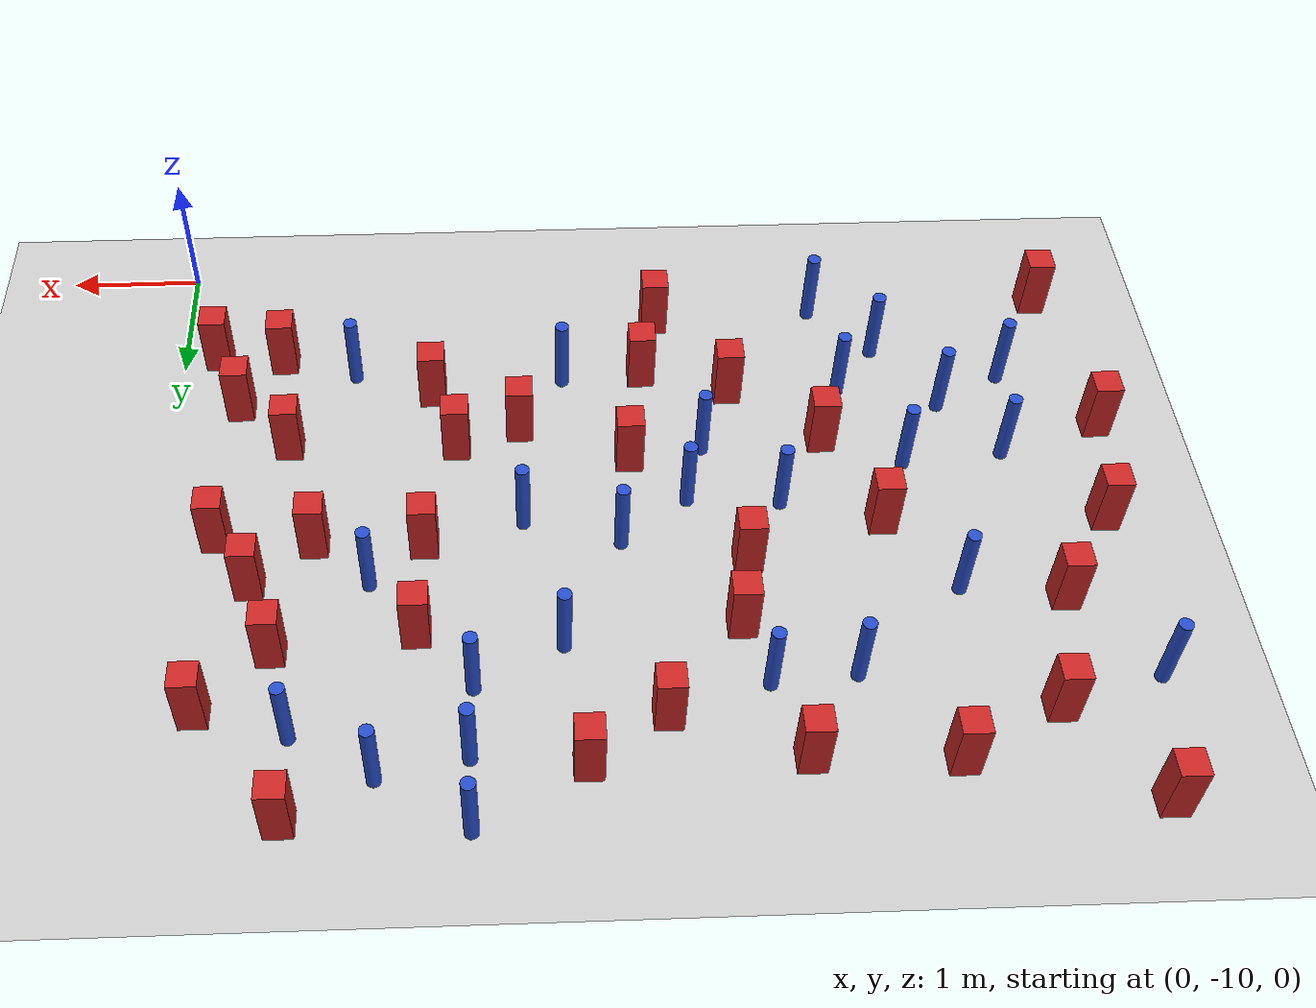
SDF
<sdf version="1.6">
 <world name="default">
  <model name="ground_plane">
   <static>1</static>
   <link name="link">
    <collision name="collision">
     <geometry><plane><normal>0 0 1</normal><size>100 100</size></plane></geometry>
     <surface><friction><ode><mu>100</mu><mu2>50</mu2></ode></friction></surface>
    </collision>
    <visual name="visual">
     <cast_shadows>0</cast_shadows>
     <geometry><plane><normal>0 0 1</normal><size>100 100</size></plane></geometry>
     <material>
      <ambient>1.0 1.0 1.0 1.0</ambient>
      <diffuse>0.8 0.8 0.8 1.0</diffuse>
      <specular>0.01 0.01 0.01 1.000000</specular>
     </material>
    </visual>
   </link>
  </model>
  <model name="pole_obstacle0">
   <static>true</static>
   <pose>-4.22685877733 -5.90566886651 -3.09024884793e-07 -7.19054271911e-07 -2.1131507516e-07 -1.93935509277e-07</pose>
   <link name="link">
    <pose>0 0 0.3 0 -0 0</pose>
    <inertial>
     <mass>1</mass>
     <inertia><ixx>0.145833</ixx><ixy>0</ixy><ixz>0</ixz><iyy>0.145833</iyy><iyz>0</iyz><izz>0.125</izz></inertia>
    </inertial>
    <collision name="collision">
     <geometry><cylinder><radius>0.05</radius><length>.6</length></cylinder></geometry>
    </collision>
    <visual name="visual">
     <geometry><cylinder><radius>0.05</radius><length>.6</length></cylinder></geometry>
     <material>
      <script><name>Gazebo/Blue</name><uri>file://media/materials/scripts/gazebo.material</uri></script>
     </material>
    </visual>
   </link>
  </model>
  <model name="pole_obstacle3">
   <static>true</static>
   <pose>-2.24240057749 -5.93828908291 -3.09024884793e-07 -7.19054271912e-07 -2.11315075134e-07 -1.93935509266e-07</pose>
   <link name="link">
    <pose>0 0 0.3 0 -0 0</pose>
    <inertial>
     <mass>1</mass>
     <inertia><ixx>0.145833</ixx><ixy>0</ixy><ixz>0</ixz><iyy>0.145833</iyy><iyz>0</iyz><izz>0.125</izz></inertia>
    </inertial>
    <collision name="collision">
     <geometry><cylinder><radius>0.05</radius><length>.6</length></cylinder></geometry>
    </collision>
    <visual name="visual">
     <geometry><cylinder><radius>0.05</radius><length>.6</length></cylinder></geometry>
     <material>
      <script><name>Gazebo/Blue</name><uri>file://media/materials/scripts/gazebo.material</uri></script>
     </material>
    </visual>
   </link>
  </model>
  <model name="square_post_obstacle6">
   <static>true</static>
   <pose>-0.40497941243 -5.79051482355 -4.36207812815e-07 3.75137919937e-06 9.77721102514e-07 2.47381364184e-05</pose>
   <link name="link">
    <pose>0 0 0.25 0 -0 0</pose>
    <inertial>
     <mass>100</mass>
     <inertia>
      <ixx>0.166667</ixx>
      <ixy>0</ixy>
      <ixz>0</ixz>
      <iyy>0.166667</iyy>
      <iyz>0</iyz>
      <izz>0.166667</izz>
     </inertia>
    </inertial>
    <collision name="collision"><geometry><box><size>.2 .2 .5</size></box></geometry></collision>
    <visual name="visual">
     <geometry><box><size>.2 .2 .5</size></box></geometry>
     <material>
      <script><name>Gazebo/Red</name><uri>file://media/materials/scripts/gazebo.material</uri></script>
     </material>
    </visual>
   </link>
  </model>
  <model name="pole_obstacle16">
   <static>true</static>
   <pose>-5.43233219148 -7.82318585264 -3.09024884793e-07 -7.19054271911e-07 -2.1131507516e-07 -1.93935509277e-07</pose>
   <link name="link">
    <pose>0 0 0.3 0 -0 0</pose>
    <inertial>
     <mass>1</mass>
     <inertia><ixx>0.145833</ixx><ixy>0</ixy><ixz>0</ixz><iyy>0.145833</iyy><iyz>0</iyz><izz>0.125</izz></inertia>
    </inertial>
    <collision name="collision">
     <geometry><cylinder><radius>0.05</radius><length>.6</length></cylinder></geometry>
    </collision>
    <visual name="visual">
     <geometry><cylinder><radius>0.05</radius><length>.6</length></cylinder></geometry>
     <material>
      <script><name>Gazebo/Blue</name><uri>file://media/materials/scripts/gazebo.material</uri></script>
     </material>
    </visual>
   </link>
  </model>
  <model name="pole_obstacle20">
   <static>true</static>
   <pose>-4.82213224329 -5.9598305133 -3.09024884793e-07 -7.19054271911e-07 -2.1131507516e-07 -1.93935509277e-07</pose>
   <link name="link">
    <pose>0 0 0.3 0 -0 0</pose>
    <inertial>
     <mass>1</mass>
     <inertia><ixx>0.145833</ixx><ixy>0</ixy><ixz>0</ixz><iyy>0.145833</iyy><iyz>0</iyz><izz>0.125</izz></inertia>
    </inertial>
    <collision name="collision">
     <geometry><cylinder><radius>0.05</radius><length>.6</length></cylinder></geometry>
    </collision>
    <visual name="visual">
     <geometry><cylinder><radius>0.05</radius><length>.6</length></cylinder></geometry>
     <material>
      <script><name>Gazebo/Blue</name><uri>file://media/materials/scripts/gazebo.material</uri></script>
     </material>
    </visual>
   </link>
  </model>
  <model name="pole_obstacle22">
   <static>true</static>
   <pose>-3.80070359319 -7.52140959583 -3.09024884793e-07 -7.19054271912e-07 -2.11315075134e-07 -1.93935509266e-07</pose>
   <link name="link">
    <pose>0 0 0.3 0 -0 0</pose>
    <inertial>
     <mass>1</mass>
     <inertia><ixx>0.145833</ixx><ixy>0</ixy><ixz>0</ixz><iyy>0.145833</iyy><iyz>0</iyz><izz>0.125</izz></inertia>
    </inertial>
    <collision name="collision">
     <geometry><cylinder><radius>0.05</radius><length>.6</length></cylinder></geometry>
    </collision>
    <visual name="visual">
     <geometry><cylinder><radius>0.05</radius><length>.6</length></cylinder></geometry>
     <material>
      <script><name>Gazebo/Blue</name><uri>file://media/materials/scripts/gazebo.material</uri></script>
     </material>
    </visual>
   </link>
  </model>
  <model name="square_post_obstacle26">
   <static>true</static>
   <pose>-6.79005237158 -7.24333525429 -4.36207812815e-07 3.75137919937e-06 9.77721102514e-07 2.47381364184e-05</pose>
   <link name="link">
    <pose>0 0 0.25 0 -0 0</pose>
    <inertial>
     <mass>100</mass>
     <inertia>
      <ixx>0.166667</ixx>
      <ixy>0</ixy>
      <ixz>0</ixz>
      <iyy>0.166667</iyy>
      <iyz>0</iyz>
      <izz>0.166667</izz>
     </inertia>
    </inertial>
    <collision name="collision"><geometry><box><size>.2 .2 .5</size></box></geometry></collision>
    <visual name="visual">
     <geometry><box><size>.2 .2 .5</size></box></geometry>
     <material>
      <script><name>Gazebo/Red</name><uri>file://media/materials/scripts/gazebo.material</uri></script>
     </material>
    </visual>
   </link>
  </model>
  <model name="square_post_obstacle30">
   <static>true</static>
   <pose>-3.54506290027 -8.79145635871 -4.36207812815e-07 3.75137919937e-06 9.77721102514e-07 2.47381364184e-05</pose>
   <link name="link">
    <pose>0 0 0.25 0 -0 0</pose>
    <inertial>
     <mass>100</mass>
     <inertia>
      <ixx>0.166667</ixx>
      <ixy>0</ixy>
      <ixz>0</ixz>
      <iyy>0.166667</iyy>
      <iyz>0</iyz>
      <izz>0.166667</izz>
     </inertia>
    </inertial>
    <collision name="collision"><geometry><box><size>.2 .2 .5</size></box></geometry></collision>
    <visual name="visual">
     <geometry><box><size>.2 .2 .5</size></box></geometry>
     <material>
      <script><name>Gazebo/Red</name><uri>file://media/materials/scripts/gazebo.material</uri></script>
     </material>
    </visual>
   </link>
  </model>
  <model name="pole_obstacle50">
   <static>true</static>
   <pose>-1.03329216973 -5.59399707839 -3.09024884793e-07 -7.19054271912e-07 -2.11315075133e-07 -1.93935509264e-07</pose>
   <link name="link">
    <pose>0 0 0.3 0 -0 0</pose>
    <inertial>
     <mass>1</mass>
     <inertia><ixx>0.145833</ixx><ixy>0</ixy><ixz>0</ixz><iyy>0.145833</iyy><iyz>0</iyz><izz>0.125</izz></inertia>
    </inertial>
    <collision name="collision">
     <geometry><cylinder><radius>0.05</radius><length>.6</length></cylinder></geometry>
    </collision>
    <visual name="visual">
     <geometry><cylinder><radius>0.05</radius><length>.6</length></cylinder></geometry>
     <material>
      <script><name>Gazebo/Blue</name><uri>file://media/materials/scripts/gazebo.material</uri></script>
     </material>
    </visual>
   </link>
  </model>
  <model name="pole_obstacle54">
   <static>true</static>
   <pose>-6.1854436074 -7.89839784507 -3.09024884793e-07 -7.19054271911e-07 -2.1131507516e-07 -1.93935509277e-07</pose>
   <link name="link">
    <pose>0 0 0.3 0 -0 0</pose>
    <inertial>
     <mass>1</mass>
     <inertia><ixx>0.145833</ixx><ixy>0</ixy><ixz>0</ixz><iyy>0.145833</iyy><iyz>0</iyz><izz>0.125</izz></inertia>
    </inertial>
    <collision name="collision">
     <geometry><cylinder><radius>0.05</radius><length>.6</length></cylinder></geometry>
    </collision>
    <visual name="visual">
     <geometry><cylinder><radius>0.05</radius><length>.6</length></cylinder></geometry>
     <material>
      <script><name>Gazebo/Blue</name><uri>file://media/materials/scripts/gazebo.material</uri></script>
     </material>
    </visual>
   </link>
  </model>
  <model name="pole_obstacle55">
   <static>true</static>
   <pose>-2.21987423086 -5.39950368308 -3.09024884793e-07 -7.19054271912e-07 -2.11315075134e-07 -1.93935509266e-07</pose>
   <link name="link">
    <pose>0 0 0.3 0 -0 0</pose>
    <inertial>
     <mass>1</mass>
     <inertia><ixx>0.145833</ixx><ixy>0</ixy><ixz>0</ixz><iyy>0.145833</iyy><iyz>0</iyz><izz>0.125</izz></inertia>
    </inertial>
    <collision name="collision">
     <geometry><cylinder><radius>0.05</radius><length>.6</length></cylinder></geometry>
    </collision>
    <visual name="visual">
     <geometry><cylinder><radius>0.05</radius><length>.6</length></cylinder></geometry>
     <material>
      <script><name>Gazebo/Blue</name><uri>file://media/materials/scripts/gazebo.material</uri></script>
     </material>
    </visual>
   </link>
  </model>
  <model name="pole_obstacle61">
   <static>true</static>
   <pose>-2.86086476162 -6.26308975601 -3.09024884793e-07 -7.19054271912e-07 -2.11315075134e-07 -1.93935509266e-07</pose>
   <link name="link">
    <pose>0 0 0.3 0 -0 0</pose>
    <inertial>
     <mass>1</mass>
     <inertia><ixx>0.145833</ixx><ixy>0</ixy><ixz>0</ixz><iyy>0.145833</iyy><iyz>0</iyz><izz>0.125</izz></inertia>
    </inertial>
    <collision name="collision">
     <geometry><cylinder><radius>0.05</radius><length>.6</length></cylinder></geometry>
    </collision>
    <visual name="visual">
     <geometry><cylinder><radius>0.05</radius><length>.6</length></cylinder></geometry>
     <material>
      <script><name>Gazebo/Blue</name><uri>file://media/materials/scripts/gazebo.material</uri></script>
     </material>
    </visual>
   </link>
  </model>
  <model name="square_post_obstacle48">
   <static>true</static>
   <pose>-1.11841032075 -7.18690967486 -4.36207812815e-07 3.75137919937e-06 9.77721102514e-07 2.47381364184e-05</pose>
   <link name="link">
    <pose>0 0 0.25 0 -0 0</pose>
    <inertial>
     <mass>100</mass>
     <inertia>
      <ixx>0.166667</ixx>
      <ixy>0</ixy>
      <ixz>0</ixz>
      <iyy>0.166667</iyy>
      <iyz>0</iyz>
      <izz>0.166667</izz>
     </inertia>
    </inertial>
    <collision name="collision"><geometry><box><size>.2 .2 .5</size></box></geometry></collision>
    <visual name="visual">
     <geometry><box><size>.2 .2 .5</size></box></geometry>
     <material>
      <script><name>Gazebo/Red</name><uri>file://media/materials/scripts/gazebo.material</uri></script>
     </material>
    </visual>
   </link>
  </model>
  <model name="pole_obstacle66">
   <static>true</static>
   <pose>-5.7929600305 -8.39557212611 -3.09024884793e-07 -7.19054271912e-07 -2.1131507513e-07 -1.93935509261e-07</pose>
   <link name="link">
    <pose>0 0 0.3 0 -0 0</pose>
    <inertial>
     <mass>1</mass>
     <inertia><ixx>0.145833</ixx><ixy>0</ixy><ixz>0</ixz><iyy>0.145833</iyy><iyz>0</iyz><izz>0.125</izz></inertia>
    </inertial>
    <collision name="collision">
     <geometry><cylinder><radius>0.05</radius><length>.6</length></cylinder></geometry>
    </collision>
    <visual name="visual">
     <geometry><cylinder><radius>0.05</radius><length>.6</length></cylinder></geometry>
     <material>
      <script><name>Gazebo/Blue</name><uri>file://media/materials/scripts/gazebo.material</uri></script>
     </material>
    </visual>
   </link>
  </model>
  <model name="square_post_obstacle52">
   <static>true</static>
   <pose>-1.02269006401 -4.9662710609 -4.36207812815e-07 3.75137919937e-06 9.77721102514e-07 2.47381364184e-05</pose>
   <link name="link">
    <pose>0 0 0.25 0 -0 0</pose>
    <inertial>
     <mass>100</mass>
     <inertia>
      <ixx>0.166667</ixx>
      <ixy>0</ixy>
      <ixz>0</ixz>
      <iyy>0.166667</iyy>
      <iyz>0</iyz>
      <izz>0.166667</izz>
     </inertia>
    </inertial>
    <collision name="collision"><geometry><box><size>.2 .2 .5</size></box></geometry></collision>
    <visual name="visual">
     <geometry><box><size>.2 .2 .5</size></box></geometry>
     <material>
      <script><name>Gazebo/Red</name><uri>file://media/materials/scripts/gazebo.material</uri></script>
     </material>
    </visual>
   </link>
  </model>
  <model name="square_post_obstacle57">
   <static>true</static>
   <pose>-4.41777826321 -5.31722861614 -4.36207812815e-07 3.75137919937e-06 9.77721102514e-07 2.47381364184e-05</pose>
   <link name="link">
    <pose>0 0 0.25 0 -0 0</pose>
    <inertial>
     <mass>100</mass>
     <inertia>
      <ixx>0.166667</ixx>
      <ixy>0</ixy>
      <ixz>0</ixz>
      <iyy>0.166667</iyy>
      <iyz>0</iyz>
      <izz>0.166667</izz>
     </inertia>
    </inertial>
    <collision name="collision"><geometry><box><size>.2 .2 .5</size></box></geometry></collision>
    <visual name="visual">
     <geometry><box><size>.2 .2 .5</size></box></geometry>
     <material>
      <script><name>Gazebo/Red</name><uri>file://media/materials/scripts/gazebo.material</uri></script>
     </material>
    </visual>
   </link>
  </model>
  <model name="pole_obstacle72">
   <static>true</static>
   <pose>-6.85723296612 -5.87700242799 -3.09024884793e-07 -7.19054271911e-07 -2.1131507516e-07 -1.93935509277e-07</pose>
   <link name="link">
    <pose>0 0 0.3 0 -0 0</pose>
    <inertial>
     <mass>1</mass>
     <inertia><ixx>0.145833</ixx><ixy>0</ixy><ixz>0</ixz><iyy>0.145833</iyy><iyz>0</iyz><izz>0.125</izz></inertia>
    </inertial>
    <collision name="collision">
     <geometry><cylinder><radius>0.05</radius><length>.6</length></cylinder></geometry>
    </collision>
    <visual name="visual">
     <geometry><cylinder><radius>0.05</radius><length>.6</length></cylinder></geometry>
     <material>
      <script><name>Gazebo/Blue</name><uri>file://media/materials/scripts/gazebo.material</uri></script>
     </material>
    </visual>
   </link>
  </model>
  <model name="square_post_obstacle64">
   <static>true</static>
   <pose>-5.39060618571 -5.26934109784 -4.36207812815e-07 3.75137919937e-06 9.77721102514e-07 2.47381364184e-05</pose>
   <link name="link">
    <pose>0 0 0.25 0 -0 0</pose>
    <inertial>
     <mass>100</mass>
     <inertia>
      <ixx>0.166667</ixx>
      <ixy>0</ixy>
      <ixz>0</ixz>
      <iyy>0.166667</iyy>
      <iyz>0</iyz>
      <izz>0.166667</izz>
     </inertia>
    </inertial>
    <collision name="collision"><geometry><box><size>.2 .2 .5</size></box></geometry></collision>
    <visual name="visual">
     <geometry><box><size>.2 .2 .5</size></box></geometry>
     <material>
      <script><name>Gazebo/Red</name><uri>file://media/materials/scripts/gazebo.material</uri></script>
     </material>
    </visual>
   </link>
  </model>
  <model name="square_post_obstacle66">
   <static>true</static>
   <pose>-0.787375594648 -9.02490645949 -4.36207812815e-07 3.75137919937e-06 9.77721102514e-07 2.47381364184e-05</pose>
   <link name="link">
    <pose>0 0 0.25 0 -0 0</pose>
    <inertial>
     <mass>100</mass>
     <inertia>
      <ixx>0.166667</ixx>
      <ixy>0</ixy>
      <ixz>0</ixz>
      <iyy>0.166667</iyy>
      <iyz>0</iyz>
      <izz>0.166667</izz>
     </inertia>
    </inertial>
    <collision name="collision"><geometry><box><size>.2 .2 .5</size></box></geometry></collision>
    <visual name="visual">
     <geometry><box><size>.2 .2 .5</size></box></geometry>
     <material>
      <script><name>Gazebo/Red</name><uri>file://media/materials/scripts/gazebo.material</uri></script>
     </material>
    </visual>
   </link>
  </model>
  <model name="pole_obstacle84">
   <static>true</static>
   <pose>-2.60776745667 -7.34973270101 -3.09024884793e-07 -7.19054271912e-07 -2.11315075134e-07 -1.93935509266e-07</pose>
   <link name="link">
    <pose>0 0 0.3 0 -0 0</pose>
    <inertial>
     <mass>1</mass>
     <inertia><ixx>0.145833</ixx><ixy>0</ixy><ixz>0</ixz><iyy>0.145833</iyy><iyz>0</iyz><izz>0.125</izz></inertia>
    </inertial>
    <collision name="collision">
     <geometry><cylinder><radius>0.05</radius><length>.6</length></cylinder></geometry>
    </collision>
    <visual name="visual">
     <geometry><cylinder><radius>0.05</radius><length>.6</length></cylinder></geometry>
     <material>
      <script><name>Gazebo/Blue</name><uri>file://media/materials/scripts/gazebo.material</uri></script>
     </material>
    </visual>
   </link>
  </model>
  <model name="square_post_obstacle79">
   <static>true</static>
   <pose>-4.84732686888 -8.06731916734 -4.36207812815e-07 3.75137919937e-06 9.77721102514e-07 2.47381364184e-05</pose>
   <link name="link">
    <pose>0 0 0.25 0 -0 0</pose>
    <inertial>
     <mass>100</mass>
     <inertia>
      <ixx>0.166667</ixx>
      <ixy>0</ixy>
      <ixz>0</ixz>
      <iyy>0.166667</iyy>
      <iyz>0</iyz>
      <izz>0.166667</izz>
     </inertia>
    </inertial>
    <collision name="collision"><geometry><box><size>.2 .2 .5</size></box></geometry></collision>
    <visual name="visual">
     <geometry><box><size>.2 .2 .5</size></box></geometry>
     <material>
      <script><name>Gazebo/Red</name><uri>file://media/materials/scripts/gazebo.material</uri></script>
     </material>
    </visual>
   </link>
  </model>
  <model name="pole_obstacle90">
   <static>true</static>
   <pose>-4.93359019213 -9.44469304234 -3.09024884793e-07 -7.19054271912e-07 -2.1131507513e-07 -1.93935509261e-07</pose>
   <link name="link">
    <pose>0 0 0.3 0 -0 0</pose>
    <inertial>
     <mass>1</mass>
     <inertia><ixx>0.145833</ixx><ixy>0</ixy><ixz>0</ixz><iyy>0.145833</iyy><iyz>0</iyz><izz>0.125</izz></inertia>
    </inertial>
    <collision name="collision">
     <geometry><cylinder><radius>0.05</radius><length>.6</length></cylinder></geometry>
    </collision>
    <visual name="visual">
     <geometry><cylinder><radius>0.05</radius><length>.6</length></cylinder></geometry>
     <material>
      <script><name>Gazebo/Blue</name><uri>file://media/materials/scripts/gazebo.material</uri></script>
     </material>
    </visual>
   </link>
  </model>
  <model name="square_post_obstacle87">
   <static>true</static>
   <pose>-6.74154632882 -9.49803519103 -4.36207812815e-07 3.75137919937e-06 9.77721102514e-07 2.47381364184e-05</pose>
   <link name="link">
    <pose>0 0 0.25 0 -0 0</pose>
    <inertial>
     <mass>100</mass>
     <inertia>
      <ixx>0.166667</ixx>
      <ixy>0</ixy>
      <ixz>0</ixz>
      <iyy>0.166667</iyy>
      <iyz>0</iyz>
      <izz>0.166667</izz>
     </inertia>
    </inertial>
    <collision name="collision"><geometry><box><size>.2 .2 .5</size></box></geometry></collision>
    <visual name="visual">
     <geometry><box><size>.2 .2 .5</size></box></geometry>
     <material>
      <script><name>Gazebo/Red</name><uri>file://media/materials/scripts/gazebo.material</uri></script>
     </material>
    </visual>
   </link>
  </model>
  <model name="pole_obstacle98">
   <static>true</static>
   <pose>-1.51861145344 -6.82939583395 -3.09024884793e-07 -7.19054271912e-07 -2.11315075134e-07 -1.93935509265e-07</pose>
   <link name="link">
    <pose>0 0 0.3 0 -0 0</pose>
    <inertial>
     <mass>1</mass>
     <inertia><ixx>0.145833</ixx><ixy>0</ixy><ixz>0</ixz><iyy>0.145833</iyy><iyz>0</iyz><izz>0.125</izz></inertia>
    </inertial>
    <collision name="collision">
     <geometry><cylinder><radius>0.05</radius><length>.6</length></cylinder></geometry>
    </collision>
    <visual name="visual">
     <geometry><cylinder><radius>0.05</radius><length>.6</length></cylinder></geometry>
     <material>
      <script><name>Gazebo/Blue</name><uri>file://media/materials/scripts/gazebo.material</uri></script>
     </material>
    </visual>
   </link>
  </model>
  <model name="square_post_obstacle95">
   <static>true</static>
   <pose>-6.11040092105 -5.64651498879 -4.36207812815e-07 3.75137919937e-06 9.77721102514e-07 2.47381364184e-05</pose>
   <link name="link">
    <pose>0 0 0.25 0 -0 0</pose>
    <inertial>
     <mass>100</mass>
     <inertia>
      <ixx>0.166667</ixx>
      <ixy>0</ixy>
      <ixz>0</ixz>
      <iyy>0.166667</iyy>
      <iyz>0</iyz>
      <izz>0.166667</izz>
     </inertia>
    </inertial>
    <collision name="collision"><geometry><box><size>.2 .2 .5</size></box></geometry></collision>
    <visual name="visual">
     <geometry><box><size>.2 .2 .5</size></box></geometry>
     <material>
      <script><name>Gazebo/Red</name><uri>file://media/materials/scripts/gazebo.material</uri></script>
     </material>
    </visual>
   </link>
  </model>
  <model name="pole_obstacle110">
   <static>true</static>
   <pose>-5.37275652074 -8.99198567098 -3.09024884793e-07 -7.19054271912e-07 -2.1131507513e-07 -1.93935509261e-07</pose>
   <link name="link">
    <pose>0 0 0.3 0 -0 0</pose>
    <inertial>
     <mass>1</mass>
     <inertia><ixx>0.145833</ixx><ixy>0</ixy><ixz>0</ixz><iyy>0.145833</iyy><iyz>0</iyz><izz>0.125</izz></inertia>
    </inertial>
    <collision name="collision">
     <geometry><cylinder><radius>0.05</radius><length>.6</length></cylinder></geometry>
    </collision>
    <visual name="visual">
     <geometry><cylinder><radius>0.05</radius><length>.6</length></cylinder></geometry>
     <material>
      <script><name>Gazebo/Blue</name><uri>file://media/materials/scripts/gazebo.material</uri></script>
     </material>
    </visual>
   </link>
  </model>
  <model name="pole_obstacle111">
   <static>true</static>
   <pose>-6.30846158067 -8.68051044605 -3.09024884793e-07 -7.19054271912e-07 -2.1131507513e-07 -1.93935509261e-07</pose>
   <link name="link">
    <pose>0 0 0.3 0 -0 0</pose>
    <inertial>
     <mass>1</mass>
     <inertia><ixx>0.145833</ixx><ixy>0</ixy><ixz>0</ixz><iyy>0.145833</iyy><iyz>0</iyz><izz>0.125</izz></inertia>
    </inertial>
    <collision name="collision">
     <geometry><cylinder><radius>0.05</radius><length>.6</length></cylinder></geometry>
    </collision>
    <visual name="visual">
     <geometry><cylinder><radius>0.05</radius><length>.6</length></cylinder></geometry>
     <material>
      <script><name>Gazebo/Blue</name><uri>file://media/materials/scripts/gazebo.material</uri></script>
     </material>
    </visual>
   </link>
  </model>
  <model name="square_post_obstacle107">
   <static>true</static>
   <pose>-1.9003096119 -7.15473615045 -4.36207812815e-07 3.75137919937e-06 9.77721102514e-07 2.47381364184e-05</pose>
   <link name="link">
    <pose>0 0 0.25 0 -0 0</pose>
    <inertial>
     <mass>100</mass>
     <inertia>
      <ixx>0.166667</ixx>
      <ixy>0</ixy>
      <ixz>0</ixz>
      <iyy>0.166667</iyy>
      <iyz>0</iyz>
      <izz>0.166667</izz>
     </inertia>
    </inertial>
    <collision name="collision"><geometry><box><size>.2 .2 .5</size></box></geometry></collision>
    <visual name="visual">
     <geometry><box><size>.2 .2 .5</size></box></geometry>
     <material>
      <script><name>Gazebo/Red</name><uri>file://media/materials/scripts/gazebo.material</uri></script>
     </material>
    </visual>
   </link>
  </model>
  <model name="square_post_obstacle115">
   <static>true</static>
   <pose>-4.08383093921 -6.38954138947 -4.36207812815e-07 3.75137919937e-06 9.77721102514e-07 2.47381364184e-05</pose>
   <link name="link">
    <pose>0 0 0.25 0 -0 0</pose>
    <inertial>
     <mass>100</mass>
     <inertia>
      <ixx>0.166667</ixx>
      <ixy>0</ixy>
      <ixz>0</ixz>
      <iyy>0.166667</iyy>
      <iyz>0</iyz>
      <izz>0.166667</izz>
     </inertia>
    </inertial>
    <collision name="collision"><geometry><box><size>.2 .2 .5</size></box></geometry></collision>
    <visual name="visual">
     <geometry><box><size>.2 .2 .5</size></box></geometry>
     <material>
      <script><name>Gazebo/Red</name><uri>file://media/materials/scripts/gazebo.material</uri></script>
     </material>
    </visual>
   </link>
  </model>
  <model name="square_post_obstacle129">
   <static>true</static>
   <pose>-4.19301665396 -8.58769629284 -4.36207812815e-07 3.75137919937e-06 9.77721102514e-07 2.47381364184e-05</pose>
   <link name="link">
    <pose>0 0 0.25 0 -0 0</pose>
    <inertial>
     <mass>100</mass>
     <inertia>
      <ixx>0.166667</ixx>
      <ixy>0</ixy>
      <ixz>0</ixz>
      <iyy>0.166667</iyy>
      <iyz>0</iyz>
      <izz>0.166667</izz>
     </inertia>
    </inertial>
    <collision name="collision"><geometry><box><size>.2 .2 .5</size></box></geometry></collision>
    <visual name="visual">
     <geometry><box><size>.2 .2 .5</size></box></geometry>
     <material>
      <script><name>Gazebo/Red</name><uri>file://media/materials/scripts/gazebo.material</uri></script>
     </material>
    </visual>
   </link>
  </model>
  <model name="square_post_obstacle131">
   <static>true</static>
   <pose>-0.272269935795 -9.08338894635 -4.36207812815e-07 3.75137919937e-06 9.77721102514e-07 2.47381364184e-05</pose>
   <link name="link">
    <pose>0 0 0.25 0 -0 0</pose>
    <inertial>
     <mass>100</mass>
     <inertia>
      <ixx>0.166667</ixx>
      <ixy>0</ixy>
      <ixz>0</ixz>
      <iyy>0.166667</iyy>
      <iyz>0</iyz>
      <izz>0.166667</izz>
     </inertia>
    </inertial>
    <collision name="collision"><geometry><box><size>.2 .2 .5</size></box></geometry></collision>
    <visual name="visual">
     <geometry><box><size>.2 .2 .5</size></box></geometry>
     <material>
      <script><name>Gazebo/Red</name><uri>file://media/materials/scripts/gazebo.material</uri></script>
     </material>
    </visual>
   </link>
  </model>
  <model name="square_post_obstacle135">
   <static>true</static>
   <pose>-3.52248420909 -5.67214441622 -4.36207812815e-07 3.75137919937e-06 9.77721102514e-07 2.47381364184e-05</pose>
   <link name="link">
    <pose>0 0 0.25 0 -0 0</pose>
    <inertial>
     <mass>100</mass>
     <inertia>
      <ixx>0.166667</ixx>
      <ixy>0</ixy>
      <ixz>0</ixz>
      <iyy>0.166667</iyy>
      <iyz>0</iyz>
      <izz>0.166667</izz>
     </inertia>
    </inertial>
    <collision name="collision"><geometry><box><size>.2 .2 .5</size></box></geometry></collision>
    <visual name="visual">
     <geometry><box><size>.2 .2 .5</size></box></geometry>
     <material>
      <script><name>Gazebo/Red</name><uri>file://media/materials/scripts/gazebo.material</uri></script>
     </material>
    </visual>
   </link>
  </model>
  <model name="square_post_obstacle137">
   <static>true</static>
   <pose>-0.881133966788 -8.12840176138 -4.36207812815e-07 3.75137919937e-06 9.77721102514e-07 2.47381364184e-05</pose>
   <link name="link">
    <pose>0 0 0.25 0 -0 0</pose>
    <inertial>
     <mass>100</mass>
     <inertia>
      <ixx>0.166667</ixx>
      <ixy>0</ixy>
      <ixz>0</ixz>
      <iyy>0.166667</iyy>
      <iyz>0</iyz>
      <izz>0.166667</izz>
     </inertia>
    </inertial>
    <collision name="collision"><geometry><box><size>.2 .2 .5</size></box></geometry></collision>
    <visual name="visual">
     <geometry><box><size>.2 .2 .5</size></box></geometry>
     <material>
      <script><name>Gazebo/Red</name><uri>file://media/materials/scripts/gazebo.material</uri></script>
     </material>
    </visual>
   </link>
  </model>
  <model name="pole_obstacle142">
   <static>true</static>
   <pose>-4.47785796686 -7.46909269142 -3.09024884793e-07 -7.19054271911e-07 -2.1131507516e-07 -1.93935509277e-07</pose>
   <link name="link">
    <pose>0 0 0.3 0 -0 0</pose>
    <inertial>
     <mass>1</mass>
     <inertia><ixx>0.145833</ixx><ixy>0</ixy><ixz>0</ixz><iyy>0.145833</iyy><iyz>0</iyz><izz>0.125</izz></inertia>
    </inertial>
    <collision name="collision">
     <geometry><cylinder><radius>0.05</radius><length>.6</length></cylinder></geometry>
    </collision>
    <visual name="visual">
     <geometry><cylinder><radius>0.05</radius><length>.6</length></cylinder></geometry>
     <material>
      <script><name>Gazebo/Blue</name><uri>file://media/materials/scripts/gazebo.material</uri></script>
     </material>
    </visual>
   </link>
  </model>
  <model name="pole_obstacle147">
   <static>true</static>
   <pose>-5.63901640062 -6.65568399035 -3.09024884793e-07 -7.19054271911e-07 -2.1131507516e-07 -1.93935509277e-07</pose>
   <link name="link">
    <pose>0 0 0.3 0 -0 0</pose>
    <inertial>
     <mass>1</mass>
     <inertia><ixx>0.145833</ixx><ixy>0</ixy><ixz>0</ixz><iyy>0.145833</iyy><iyz>0</iyz><izz>0.125</izz></inertia>
    </inertial>
    <collision name="collision">
     <geometry><cylinder><radius>0.05</radius><length>.6</length></cylinder></geometry>
    </collision>
    <visual name="visual">
     <geometry><cylinder><radius>0.05</radius><length>.6</length></cylinder></geometry>
     <material>
      <script><name>Gazebo/Blue</name><uri>file://media/materials/scripts/gazebo.material</uri></script>
     </material>
    </visual>
   </link>
  </model>
  <model name="pole_obstacle159">
   <static>true</static>
   <pose>-2.93763325593 -8.76210277822 -3.09024884848e-07 -7.19054271902e-07 -2.11315075199e-07 -1.93935509286e-07</pose>
   <link name="link">
    <pose>0 0 0.3 0 -0 0</pose>
    <inertial>
     <mass>1</mass>
     <inertia><ixx>0.145833</ixx><ixy>0</ixy><ixz>0</ixz><iyy>0.145833</iyy><iyz>0</iyz><izz>0.125</izz></inertia>
    </inertial>
    <collision name="collision">
     <geometry><cylinder><radius>0.05</radius><length>.6</length></cylinder></geometry>
    </collision>
    <visual name="visual">
     <geometry><cylinder><radius>0.05</radius><length>.6</length></cylinder></geometry>
     <material>
      <script><name>Gazebo/Blue</name><uri>file://media/materials/scripts/gazebo.material</uri></script>
     </material>
    </visual>
   </link>
  </model>
  <model name="pole_obstacle162">
   <static>true</static>
   <pose>-5.0475799587 -8.57871678473 -3.09024884793e-07 -7.19054271912e-07 -2.1131507513e-07 -1.93935509261e-07</pose>
   <link name="link">
    <pose>0 0 0.3 0 -0 0</pose>
    <inertial>
     <mass>1</mass>
     <inertia><ixx>0.145833</ixx><ixy>0</ixy><ixz>0</ixz><iyy>0.145833</iyy><iyz>0</iyz><izz>0.125</izz></inertia>
    </inertial>
    <collision name="collision">
     <geometry><cylinder><radius>0.05</radius><length>.6</length></cylinder></geometry>
    </collision>
    <visual name="visual">
     <geometry><cylinder><radius>0.05</radius><length>.6</length></cylinder></geometry>
     <material>
      <script><name>Gazebo/Blue</name><uri>file://media/materials/scripts/gazebo.material</uri></script>
     </material>
    </visual>
   </link>
  </model>
  <model name="square_post_obstacle164">
   <static>true</static>
   <pose>-1.94509328346 -8.63675327335 -4.36207812815e-07 3.75137919937e-06 9.77721102514e-07 2.47381364184e-05</pose>
   <link name="link">
    <pose>0 0 0.25 0 -0 0</pose>
    <inertial>
     <mass>100</mass>
     <inertia>
      <ixx>0.166667</ixx>
      <ixy>0</ixy>
      <ixz>0</ixz>
      <iyy>0.166667</iyy>
      <iyz>0</iyz>
      <izz>0.166667</izz>
     </inertia>
    </inertial>
    <collision name="collision"><geometry><box><size>.2 .2 .5</size></box></geometry></collision>
    <visual name="visual">
     <geometry><box><size>.2 .2 .5</size></box></geometry>
     <material>
      <script><name>Gazebo/Red</name><uri>file://media/materials/scripts/gazebo.material</uri></script>
     </material>
    </visual>
   </link>
  </model>
  <model name="square_post_obstacle170">
   <static>true</static>
   <pose>-2.59967793095 -8.25230023433 -4.36207812815e-07 3.75137919937e-06 9.77721102514e-07 2.47381364184e-05</pose>
   <link name="link">
    <pose>0 0 0.25 0 -0 0</pose>
    <inertial>
     <mass>100</mass>
     <inertia>
      <ixx>0.166667</ixx>
      <ixy>0</ixy>
      <ixz>0</ixz>
      <iyy>0.166667</iyy>
      <iyz>0</iyz>
      <izz>0.166667</izz>
     </inertia>
    </inertial>
    <collision name="collision"><geometry><box><size>.2 .2 .5</size></box></geometry></collision>
    <visual name="visual">
     <geometry><box><size>.2 .2 .5</size></box></geometry>
     <material>
      <script><name>Gazebo/Red</name><uri>file://media/materials/scripts/gazebo.material</uri></script>
     </material>
    </visual>
   </link>
  </model>
  <model name="pole_obstacle171">
   <static>true</static>
   <pose>-3.95125425822 -8.01776429016 -3.09024884793e-07 -7.19054271912e-07 -2.11315075122e-07 -1.93935509258e-07</pose>
   <link name="link">
    <pose>0 0 0.3 0 -0 0</pose>
    <inertial>
     <mass>1</mass>
     <inertia><ixx>0.145833</ixx><ixy>0</ixy><ixz>0</ixz><iyy>0.145833</iyy><iyz>0</iyz><izz>0.125</izz></inertia>
    </inertial>
    <collision name="collision">
     <geometry><cylinder><radius>0.05</radius><length>.6</length></cylinder></geometry>
    </collision>
    <visual name="visual">
     <geometry><cylinder><radius>0.05</radius><length>.6</length></cylinder></geometry>
     <material>
      <script><name>Gazebo/Blue</name><uri>file://media/materials/scripts/gazebo.material</uri></script>
     </material>
    </visual>
   </link>
  </model>
  <model name="square_post_obstacle176">
   <static>true</static>
   <pose>-3.40351681083 -7.92381632792 -4.36207812815e-07 3.75137919937e-06 9.77721102514e-07 2.47381364184e-05</pose>
   <link name="link">
    <pose>0 0 0.25 0 -0 0</pose>
    <inertial>
     <mass>100</mass>
     <inertia>
      <ixx>0.166667</ixx>
      <ixy>0</ixy>
      <ixz>0</ixz>
      <iyy>0.166667</iyy>
      <iyz>0</iyz>
      <izz>0.166667</izz>
     </inertia>
    </inertial>
    <collision name="collision"><geometry><box><size>.2 .2 .5</size></box></geometry></collision>
    <visual name="visual">
     <geometry><box><size>.2 .2 .5</size></box></geometry>
     <material>
      <script><name>Gazebo/Red</name><uri>file://media/materials/scripts/gazebo.material</uri></script>
     </material>
    </visual>
   </link>
  </model>
  <model name="square_post_obstacle179">
   <static>true</static>
   <pose>-4.18235072928 -6.94297817895 -4.36207812815e-07 3.75137919937e-06 9.77721102514e-07 2.47381364184e-05</pose>
   <link name="link">
    <pose>0 0 0.25 0 -0 0</pose>
    <inertial>
     <mass>100</mass>
     <inertia>
      <ixx>0.166667</ixx>
      <ixy>0</ixy>
      <ixz>0</ixz>
      <iyy>0.166667</iyy>
      <iyz>0</iyz>
      <izz>0.166667</izz>
     </inertia>
    </inertial>
    <collision name="collision"><geometry><box><size>.2 .2 .5</size></box></geometry></collision>
    <visual name="visual">
     <geometry><box><size>.2 .2 .5</size></box></geometry>
     <material>
      <script><name>Gazebo/Red</name><uri>file://media/materials/scripts/gazebo.material</uri></script>
     </material>
    </visual>
   </link>
  </model>
  <model name="square_post_obstacle181">
   <static>true</static>
   <pose>-6.34459814092 -6.54917669458 -4.36207812815e-07 3.75137919937e-06 9.77721102514e-07 2.47381364184e-05</pose>
   <link name="link">
    <pose>0 0 0.25 0 -0 0</pose>
    <inertial>
     <mass>100</mass>
     <inertia>
      <ixx>0.166667</ixx>
      <ixy>0</ixy>
      <ixz>0</ixz>
      <iyy>0.166667</iyy>
      <iyz>0</iyz>
      <izz>0.166667</izz>
     </inertia>
    </inertial>
    <collision name="collision"><geometry><box><size>.2 .2 .5</size></box></geometry></collision>
    <visual name="visual">
     <geometry><box><size>.2 .2 .5</size></box></geometry>
     <material>
      <script><name>Gazebo/Red</name><uri>file://media/materials/scripts/gazebo.material</uri></script>
     </material>
    </visual>
   </link>
  </model>
  <model name="square_post_obstacle187">
   <static>true</static>
   <pose>-5.1835461957 -7.26385628437 -4.36207812815e-07 3.75137919937e-06 9.77721102514e-07 2.47381364184e-05</pose>
   <link name="link">
    <pose>0 0 0.25 0 -0 0</pose>
    <inertial>
     <mass>100</mass>
     <inertia>
      <ixx>0.166667</ixx>
      <ixy>0</ixy>
      <ixz>0</ixz>
      <iyy>0.166667</iyy>
      <iyz>0</iyz>
      <izz>0.166667</izz>
     </inertia>
    </inertial>
    <collision name="collision"><geometry><box><size>.2 .2 .5</size></box></geometry></collision>
    <visual name="visual">
     <geometry><box><size>.2 .2 .5</size></box></geometry>
     <material>
      <script><name>Gazebo/Red</name><uri>file://media/materials/scripts/gazebo.material</uri></script>
     </material>
    </visual>
   </link>
  </model>
  <model name="square_post_obstacle189">
   <static>true</static>
   <pose>-2.12553830256 -8.08500171736 -4.36207812815e-07 3.75137919937e-06 9.77721102514e-07 2.47381364184e-05</pose>
   <link name="link">
    <pose>0 0 0.25 0 -0 0</pose>
    <inertial>
     <mass>100</mass>
     <inertia>
      <ixx>0.166667</ixx>
      <ixy>0</ixy>
      <ixz>0</ixz>
      <iyy>0.166667</iyy>
      <iyz>0</iyz>
      <izz>0.166667</izz>
     </inertia>
    </inertial>
    <collision name="collision"><geometry><box><size>.2 .2 .5</size></box></geometry></collision>
    <visual name="visual">
     <geometry><box><size>.2 .2 .5</size></box></geometry>
     <material>
      <script><name>Gazebo/Red</name><uri>file://media/materials/scripts/gazebo.material</uri></script>
     </material>
    </visual>
   </link>
  </model>
  <model name="square_post_obstacle192">
   <static>true</static>
   <pose>-1.85659662 -6.38376402646 -4.36207812815e-07 3.75137919937e-06 9.77721102514e-07 2.47381364184e-05</pose>
   <link name="link">
    <pose>0 0 0.25 0 -0 0</pose>
    <inertial>
     <mass>100</mass>
     <inertia>
      <ixx>0.166667</ixx>
      <ixy>0</ixy>
      <ixz>0</ixz>
      <iyy>0.166667</iyy>
      <iyz>0</iyz>
      <izz>0.166667</izz>
     </inertia>
    </inertial>
    <collision name="collision"><geometry><box><size>.2 .2 .5</size></box></geometry></collision>
    <visual name="visual">
     <geometry><box><size>.2 .2 .5</size></box></geometry>
     <material>
      <script><name>Gazebo/Red</name><uri>file://media/materials/scripts/gazebo.material</uri></script>
     </material>
    </visual>
   </link>
  </model>
  <model name="pole_obstacle188">
   <static>true</static>
   <pose>-1.34447334993 -8.85740421107 -3.09024884793e-07 -7.19054271912e-07 -2.1131507515e-07 -1.93935509273e-07</pose>
   <link name="link">
    <pose>0 0 0.3 0 -0 0</pose>
    <inertial>
     <mass>1</mass>
     <inertia><ixx>0.145833</ixx><ixy>0</ixy><ixz>0</ixz><iyy>0.145833</iyy><iyz>0</iyz><izz>0.125</izz></inertia>
    </inertial>
    <collision name="collision">
     <geometry><cylinder><radius>0.05</radius><length>.6</length></cylinder></geometry>
    </collision>
    <visual name="visual">
     <geometry><cylinder><radius>0.05</radius><length>.6</length></cylinder></geometry>
     <material>
      <script><name>Gazebo/Blue</name><uri>file://media/materials/scripts/gazebo.material</uri></script>
     </material>
    </visual>
   </link>
  </model>
  <model name="pole_obstacle189">
   <static>true</static>
   <pose>-1.60469659588 -5.26448959178 -3.09024884793e-07 -7.19054271912e-07 -2.11315075134e-07 -1.93935509265e-07</pose>
   <link name="link">
    <pose>0 0 0.3 0 -0 0</pose>
    <inertial>
     <mass>1</mass>
     <inertia><ixx>0.145833</ixx><ixy>0</ixy><ixz>0</ixz><iyy>0.145833</iyy><iyz>0</iyz><izz>0.125</izz></inertia>
    </inertial>
    <collision name="collision">
     <geometry><cylinder><radius>0.05</radius><length>.6</length></cylinder></geometry>
    </collision>
    <visual name="visual">
     <geometry><cylinder><radius>0.05</radius><length>.6</length></cylinder></geometry>
     <material>
      <script><name>Gazebo/Blue</name><uri>file://media/materials/scripts/gazebo.material</uri></script>
     </material>
    </visual>
   </link>
  </model>
  <model name="square_post_obstacle199">
   <static>true</static>
   <pose>-0.412807475859 -7.26134325464 -4.36207812815e-07 3.75137919937e-06 9.77721102514e-07 2.47381364184e-05</pose>
   <link name="link">
    <pose>0 0 0.25 0 -0 0</pose>
    <inertial>
     <mass>100</mass>
     <inertia>
      <ixx>0.166667</ixx>
      <ixy>0</ixy>
      <ixz>0</ixz>
      <iyy>0.166667</iyy>
      <iyz>0</iyz>
      <izz>0.166667</izz>
     </inertia>
    </inertial>
    <collision name="collision"><geometry><box><size>.2 .2 .5</size></box></geometry></collision>
    <visual name="visual">
     <geometry><box><size>.2 .2 .5</size></box></geometry>
     <material>
      <script><name>Gazebo/Red</name><uri>file://media/materials/scripts/gazebo.material</uri></script>
     </material>
    </visual>
   </link>
  </model>
  <model name="square_post_obstacle200">
   <static>true</static>
   <pose>-3.68404370723 -9.37251184651 -4.36207812815e-07 3.75137919937e-06 9.77721102514e-07 2.47381364184e-05</pose>
   <link name="link">
    <pose>0 0 0.25 0 -0 0</pose>
    <inertial>
     <mass>100</mass>
     <inertia>
      <ixx>0.166667</ixx>
      <ixy>0</ixy>
      <ixz>0</ixz>
      <iyy>0.166667</iyy>
      <iyz>0</iyz>
      <izz>0.166667</izz>
     </inertia>
    </inertial>
    <collision name="collision"><geometry><box><size>.2 .2 .5</size></box></geometry></collision>
    <visual name="visual">
     <geometry><box><size>.2 .2 .5</size></box></geometry>
     <material>
      <script><name>Gazebo/Red</name><uri>file://media/materials/scripts/gazebo.material</uri></script>
     </material>
    </visual>
   </link>
  </model>
  <model name="pole_obstacle209">
   <static>true</static>
   <pose>-3.30053664455 -7.14213074701 -3.09024884793e-07 -7.19054271912e-07 -2.11315075134e-07 -1.93935509266e-07</pose>
   <link name="link">
    <pose>0 0 0.3 0 -0 0</pose>
    <inertial>
     <mass>1</mass>
     <inertia><ixx>0.145833</ixx><ixy>0</ixy><ixz>0</ixz><iyy>0.145833</iyy><iyz>0</iyz><izz>0.125</izz></inertia>
    </inertial>
    <collision name="collision">
     <geometry><cylinder><radius>0.05</radius><length>.6</length></cylinder></geometry>
    </collision>
    <visual name="visual">
     <geometry><cylinder><radius>0.05</radius><length>.6</length></cylinder></geometry>
     <material>
      <script><name>Gazebo/Blue</name><uri>file://media/materials/scripts/gazebo.material</uri></script>
     </material>
    </visual>
   </link>
  </model>
  <model name="square_post_obstacle208">
   <static>true</static>
   <pose>-0.875932950586 -6.26081402387 -4.36207812815e-07 3.75137919937e-06 9.77721102514e-07 2.47381364184e-05</pose>
   <link name="link">
    <pose>0 0 0.25 0 -0 0</pose>
    <inertial>
     <mass>100</mass>
     <inertia>
      <ixx>0.166667</ixx>
      <ixy>0</ixy>
      <ixz>0</ixz>
      <iyy>0.166667</iyy>
      <iyz>0</iyz>
      <izz>0.166667</izz>
     </inertia>
    </inertial>
    <collision name="collision"><geometry><box><size>.2 .2 .5</size></box></geometry></collision>
    <visual name="visual">
     <geometry><box><size>.2 .2 .5</size></box></geometry>
     <material>
      <script><name>Gazebo/Red</name><uri>file://media/materials/scripts/gazebo.material</uri></script>
     </material>
    </visual>
   </link>
  </model>
  <model name="square_post_obstacle212">
   <static>true</static>
   <pose>-0.684936782928 -6.83201081175 -4.36207812815e-07 3.75137919937e-06 9.77721102514e-07 2.47381364184e-05</pose>
   <link name="link">
    <pose>0 0 0.25 0 -0 0</pose>
    <inertial>
     <mass>100</mass>
     <inertia>
      <ixx>0.166667</ixx>
      <ixy>0</ixy>
      <ixz>0</ixz>
      <iyy>0.166667</iyy>
      <iyz>0</iyz>
      <izz>0.166667</izz>
     </inertia>
    </inertial>
    <collision name="collision"><geometry><box><size>.2 .2 .5</size></box></geometry></collision>
    <visual name="visual">
     <geometry><box><size>.2 .2 .5</size></box></geometry>
     <material>
      <script><name>Gazebo/Red</name><uri>file://media/materials/scripts/gazebo.material</uri></script>
     </material>
    </visual>
   </link>
  </model>
  <model name="pole_obstacle211">
   <static>true</static>
   <pose>-2.22852636697 -4.8729381143 -3.09024884793e-07 -7.19054271912e-07 -2.11315075134e-07 -1.93935509266e-07</pose>
   <link name="link">
    <pose>0 0 0.3 0 -0 0</pose>
    <inertial>
     <mass>1</mass>
     <inertia><ixx>0.145833</ixx><ixy>0</ixy><ixz>0</ixz><iyy>0.145833</iyy><iyz>0</iyz><izz>0.125</izz></inertia>
    </inertial>
    <collision name="collision">
     <geometry><cylinder><radius>0.05</radius><length>.6</length></cylinder></geometry>
    </collision>
    <visual name="visual">
     <geometry><cylinder><radius>0.05</radius><length>.6</length></cylinder></geometry>
     <material>
      <script><name>Gazebo/Blue</name><uri>file://media/materials/scripts/gazebo.material</uri></script>
     </material>
    </visual>
   </link>
  </model>
  <model name="square_post_obstacle216">
   <static>true</static>
   <pose>-2.9834399448 -5.31133002533 -4.36207812815e-07 3.75137919937e-06 9.77721102514e-07 2.47381364184e-05</pose>
   <link name="link">
    <pose>0 0 0.25 0 -0 0</pose>
    <inertial>
     <mass>100</mass>
     <inertia>
      <ixx>0.166667</ixx>
      <ixy>0</ixy>
      <ixz>0</ixz>
      <iyy>0.166667</iyy>
      <iyz>0</iyz>
      <izz>0.166667</izz>
     </inertia>
    </inertial>
    <collision name="collision"><geometry><box><size>.2 .2 .5</size></box></geometry></collision>
    <visual name="visual">
     <geometry><box><size>.2 .2 .5</size></box></geometry>
     <material>
      <script><name>Gazebo/Red</name><uri>file://media/materials/scripts/gazebo.material</uri></script>
     </material>
    </visual>
   </link>
  </model>
  <model name="square_post_obstacle217">
   <static>true</static>
   <pose>-6.9409399448 -8.14754002533 -4.36207812815e-07 3.75137919937e-06 9.77721102514e-07 2.47381364184e-05</pose>
   <link name="link">
    <pose>0 0 0.25 0 -0 0</pose>
    <inertial>
     <mass>100</mass>
     <inertia>
      <ixx>0.166667</ixx>
      <ixy>0</ixy>
      <ixz>0</ixz>
      <iyy>0.166667</iyy>
      <iyz>0</iyz>
      <izz>0.166667</izz>
     </inertia>
    </inertial>
    <collision name="collision"><geometry><box><size>.2 .2 .5</size></box></geometry></collision>
    <visual name="visual">
     <geometry><box><size>.2 .2 .5</size></box></geometry>
     <material>
      <script><name>Gazebo/Red</name><uri>file://media/materials/scripts/gazebo.material</uri></script>
     </material>
    </visual>
   </link>
  </model>
  <model name="square_post_obstacle226">
   <static>true</static>
   <pose>-6.6563899448 -4.92239002533 -4.36207812815e-07 3.75137919937e-06 9.77721102514e-07 2.47381364184e-05</pose>
   <link name="link">
    <pose>0 0 0.25 0 -0 0</pose>
    <inertial>
     <mass>100</mass>
     <inertia>
      <ixx>0.166667</ixx>
      <ixy>0</ixy>
      <ixz>0</ixz>
      <iyy>0.166667</iyy>
      <iyz>0</iyz>
      <izz>0.166667</izz>
     </inertia>
    </inertial>
    <collision name="collision"><geometry><box><size>.2 .2 .5</size></box></geometry></collision>
    <visual name="visual">
     <geometry><box><size>.2 .2 .5</size></box></geometry>
     <material>
      <script><name>Gazebo/Red</name><uri>file://media/materials/scripts/gazebo.material</uri></script>
     </material>
    </visual>
   </link>
  </model>
  <model name="square_post_obstacle231">
   <static>true</static>
   <pose>-0.485775944804 -8.53697002533 -4.36207812815e-07 3.75137919937e-06 9.77721102514e-07 2.47381364184e-05</pose>
   <link name="link">
    <pose>0 0 0.25 0 -0 0</pose>
    <inertial>
     <mass>100</mass>
     <inertia>
      <ixx>0.166667</ixx>
      <ixy>0</ixy>
      <ixz>0</ixz>
      <iyy>0.166667</iyy>
      <iyz>0</iyz>
      <izz>0.166667</izz>
     </inertia>
    </inertial>
    <collision name="collision"><geometry><box><size>.2 .2 .5</size></box></geometry></collision>
    <visual name="visual">
     <geometry><box><size>.2 .2 .5</size></box></geometry>
     <material>
      <script><name>Gazebo/Red</name><uri>file://media/materials/scripts/gazebo.material</uri></script>
     </material>
    </visual>
   </link>
  </model>
 </world>
</sdf>
